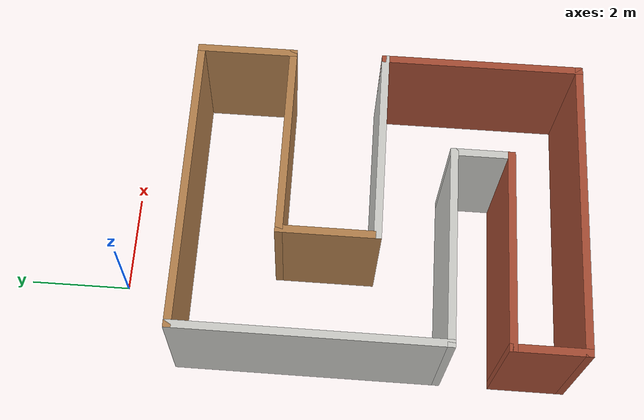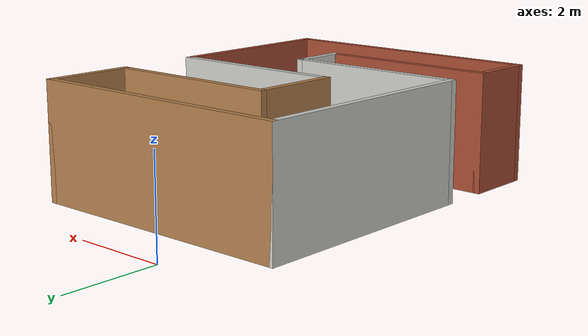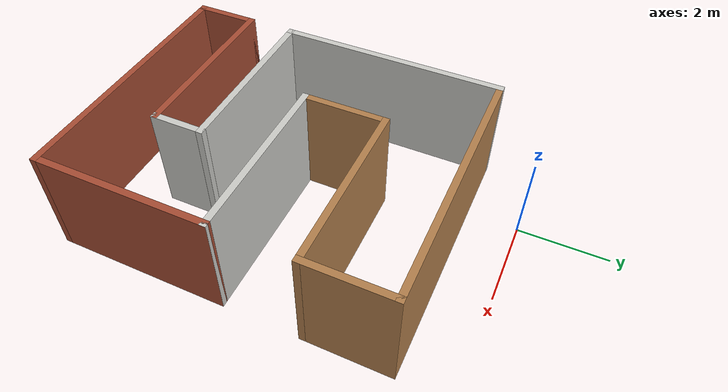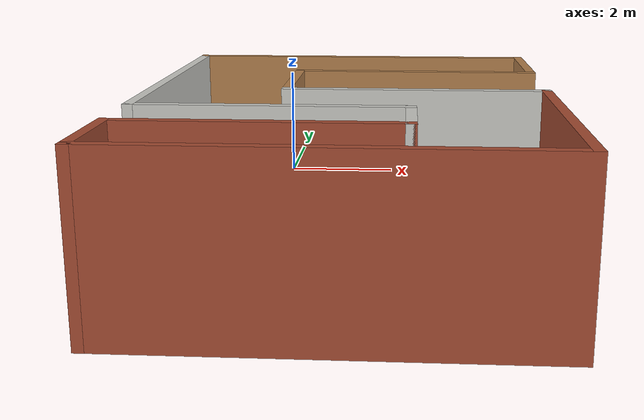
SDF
<?xml version='1.0'?>
<sdf version='1.6'>
  <model name='S_room'>
    <pose frame=''>1.425 -4.995 0 0 -0 0</pose>
    <link name='Wall_0'>
      <collision name='Wall_0_Collision'>
        <geometry>
          <box>
            <size>6 0.15 2.5</size>
          </box>
        </geometry>
        <pose frame=''>0 0 1.25 0 -0 0</pose>
      </collision>
      <visual name='Wall_0_Visual'>
        <pose frame=''>0 0 1.25 0 -0 0</pose>
        <geometry>
          <box>
            <size>6 0.15 2.5</size>
          </box>
        </geometry>
        <material>
          <script>
            <uri>file://media/materials/scripts/gazebo.material</uri>
            <name>Gazebo/Wood</name>
          </script>
          <ambient>1 1 1 1</ambient>
        </material>
        <meta>
          <layer>0</layer>
        </meta>
      </visual>
      <pose frame=''>0 3.775 0 0 -0 0</pose>
    </link>
    <link name='Wall_1'>
      <collision name='Wall_1_Collision'>
        <geometry>
          <box>
            <size>2 0.15 2.5</size>
          </box>
        </geometry>
        <pose frame=''>0 0 1.25 0 -0 0</pose>
      </collision>
      <visual name='Wall_1_Visual'>
        <pose frame=''>0 0 1.25 0 -0 0</pose>
        <geometry>
          <box>
            <size>2 0.15 2.5</size>
          </box>
        </geometry>
        <material>
          <script>
            <uri>file://media/materials/scripts/gazebo.material</uri>
            <name>Gazebo/Wood</name>
          </script>
          <ambient>1 1 1 1</ambient>
        </material>
        <meta>
          <layer>0</layer>
        </meta>
      </visual>
      <pose frame=''>2.925 2.85 0 0 0 -1.5708</pose>
    </link>
    <link name='Wall_10'>
      <collision name='Wall_10_Collision'>
        <geometry>
          <box>
            <size>4 0.15 2.5</size>
          </box>
        </geometry>
        <pose frame=''>0 0 1.25 0 -0 0</pose>
      </collision>
      <visual name='Wall_10_Visual'>
        <pose frame=''>0 0 1.25 0 -0 0</pose>
        <geometry>
          <box>
            <size>4 0.15 2.5</size>
          </box>
        </geometry>
        <material>
          <script>
            <uri>file://media/materials/scripts/gazebo.material</uri>
            <name>Gazebo/CeilingTiled</name>
          </script>
          <ambient>1 1 1 1</ambient>
        </material>
        <meta>
          <layer>0</layer>
        </meta>
      </visual>
      <pose frame=''>-1 -1.325 0 0 -0 3.14159</pose>
    </link>
    <link name='Wall_11'>
      <collision name='Wall_11_Collision'>
        <geometry>
          <box>
            <size>5.25 0.15 2.5</size>
          </box>
        </geometry>
        <pose frame=''>0 0 1.25 0 -0 0</pose>
      </collision>
      <visual name='Wall_11_Visual'>
        <pose frame=''>0 0 1.25 0 -0 0</pose>
        <geometry>
          <box>
            <size>5.25 0.15 2.5</size>
          </box>
        </geometry>
        <material>
          <script>
            <uri>file://media/materials/scripts/gazebo.material</uri>
            <name>Gazebo/CeilingTiled</name>
          </script>
          <ambient>1 1 1 1</ambient>
        </material>
        <meta>
          <layer>0</layer>
        </meta>
      </visual>
      <pose frame=''>-2.925 1.225 0 0 -0 1.5708</pose>
    </link>
    <link name='Wall_2'>
      <collision name='Wall_2_Collision'>
        <geometry>
          <box>
            <size>4 0.15 2.5</size>
          </box>
        </geometry>
        <pose frame=''>0 0 1.25 0 -0 0</pose>
      </collision>
      <visual name='Wall_2_Visual'>
        <pose frame=''>0 0 1.25 0 -0 0</pose>
        <geometry>
          <box>
            <size>4 0.15 2.5</size>
          </box>
        </geometry>
        <material>
          <script>
            <uri>file://media/materials/scripts/gazebo.material</uri>
            <name>Gazebo/Wood</name>
          </script>
          <ambient>1 1 1 1</ambient>
        </material>
        <meta>
          <layer>0</layer>
        </meta>
      </visual>
      <pose frame=''>1 1.925 0 0 -0 3.14159</pose>
    </link>
    <link name='Wall_3'>
      <collision name='Wall_3_Collision'>
        <geometry>
          <box>
            <size>2 0.15 2.5</size>
          </box>
        </geometry>
        <pose frame=''>0 0 1.25 0 -0 0</pose>
      </collision>
      <visual name='Wall_3_Visual'>
        <pose frame=''>0 0 1.25 0 -0 0</pose>
        <geometry>
          <box>
            <size>2 0.15 2.5</size>
          </box>
        </geometry>
        <material>
          <script>
            <uri>file://media/materials/scripts/gazebo.material</uri>
            <name>Gazebo/Wood</name>
          </script>
          <ambient>1 1 1 1</ambient>
        </material>
        <meta>
          <layer>0</layer>
        </meta>
      </visual>
      <pose frame=''>-0.925 1 0 0 0 -1.5708</pose>
    </link>
    <link name='Wall_4'>
      <collision name='Wall_4_Collision'>
        <geometry>
          <box>
            <size>4 0.15 2.5</size>
          </box>
        </geometry>
        <pose frame=''>0 0 1.25 0 -0 0</pose>
      </collision>
      <visual name='Wall_4_Visual'>
        <pose frame=''>0 0 1.25 0 -0 0</pose>
        <geometry>
          <box>
            <size>4 0.15 2.5</size>
          </box>
        </geometry>
        <material>
          <script>
            <uri>file://media/materials/scripts/gazebo.material</uri>
            <name>Gazebo/CeilingTiled</name>
          </script>
          <ambient>1 1 1 1</ambient>
        </material>
        <meta>
          <layer>0</layer>
        </meta>
      </visual>
      <pose frame=''>1 0.075 0 0 -0 0</pose>
    </link>
    <link name='Wall_5'>
      <collision name='Wall_5_Collision'>
        <geometry>
          <box>
            <size>4 0.15 2.5</size>
          </box>
        </geometry>
        <pose frame=''>0 0 1.25 0 -0 0</pose>
      </collision>
      <visual name='Wall_5_Visual'>
        <pose frame=''>0 0 1.25 0 -0 0</pose>
        <geometry>
          <box>
            <size>4 0.15 2.5</size>
          </box>
        </geometry>
        <material>
          <script>
            <uri>file://media/materials/scripts/gazebo.material</uri>
            <name>Gazebo/Bricks</name>
          </script>
          <ambient>1 1 1 1</ambient>
        </material>
        <meta>
          <layer>0</layer>
        </meta>
      </visual>
      <pose frame=''>2.925 -1.85 0 0 0 -1.5708</pose>
    </link>
    <link name='Wall_6'>
      <collision name='Wall_6_Collision'>
        <geometry>
          <box>
            <size>6 0.15 2.5</size>
          </box>
        </geometry>
        <pose frame=''>0 0 1.25 0 -0 0</pose>
      </collision>
      <visual name='Wall_6_Visual'>
        <pose frame=''>0 0 1.25 0 -0 0</pose>
        <geometry>
          <box>
            <size>6 0.15 2.5</size>
          </box>
        </geometry>
        <material>
          <script>
            <uri>file://media/materials/scripts/gazebo.material</uri>
            <name>Gazebo/Bricks</name>
          </script>
          <ambient>1 1 1 1</ambient>
        </material>
        <meta>
          <layer>0</layer>
        </meta>
      </visual>
      <pose frame=''>0 -3.775 0 0 -0 3.14159</pose>
    </link>
    <link name='Wall_7'>
      <collision name='Wall_7_Collision'>
        <geometry>
          <box>
            <size>1.5 0.15 2.5</size>
          </box>
        </geometry>
        <pose frame=''>0 0 1.25 0 -0 0</pose>
      </collision>
      <visual name='Wall_7_Visual'>
        <pose frame=''>0 0 1.25 0 -0 0</pose>
        <geometry>
          <box>
            <size>1.5 0.15 2.5</size>
          </box>
        </geometry>
        <material>
          <script>
            <uri>file://media/materials/scripts/gazebo.material</uri>
            <name>Gazebo/Bricks</name>
          </script>
          <ambient>1 1 1 1</ambient>
        </material>
        <meta>
          <layer>0</layer>
        </meta>
      </visual>
      <pose frame=''>-2.925 -3.1 0 0 -0 1.5708</pose>
    </link>
    <link name='Wall_8'>
      <collision name='Wall_8_Collision'>
        <geometry>
          <box>
            <size>4 0.15 2.5</size>
          </box>
        </geometry>
        <pose frame=''>0 0 1.25 0 -0 0</pose>
      </collision>
      <visual name='Wall_8_Visual'>
        <pose frame=''>0 0 1.25 0 -0 0</pose>
        <geometry>
          <box>
            <size>4 0.15 2.5</size>
          </box>
        </geometry>
        <material>
          <script>
            <uri>file://media/materials/scripts/gazebo.material</uri>
            <name>Gazebo/Bricks</name>
          </script>
          <ambient>1 1 1 1</ambient>
        </material>
        <meta>
          <layer>0</layer>
        </meta>
      </visual>
      <pose frame=''>-1 -2.425 0 0 -0 0</pose>
    </link>
    <link name='Wall_9'>
      <collision name='Wall_9_Collision'>
        <geometry>
          <box>
            <size>1.25 0.15 2.5</size>
          </box>
        </geometry>
        <pose frame=''>0 0 1.25 0 -0 0</pose>
      </collision>
      <visual name='Wall_9_Visual'>
        <pose frame=''>0 0 1.25 0 -0 0</pose>
        <geometry>
          <box>
            <size>1.25 0.15 2.5</size>
          </box>
        </geometry>
        <material>
          <script>
            <uri>file://media/materials/scripts/gazebo.material</uri>
            <name>Gazebo/CeilingTiled</name>
          </script>
          <ambient>1 1 1 1</ambient>
        </material>
        <meta>
          <layer>0</layer>
        </meta>
      </visual>
      <pose frame=''>0.925 -1.875 0 0 -0 1.5708</pose>
    </link>
    <static>1</static>
  </model>
</sdf>
